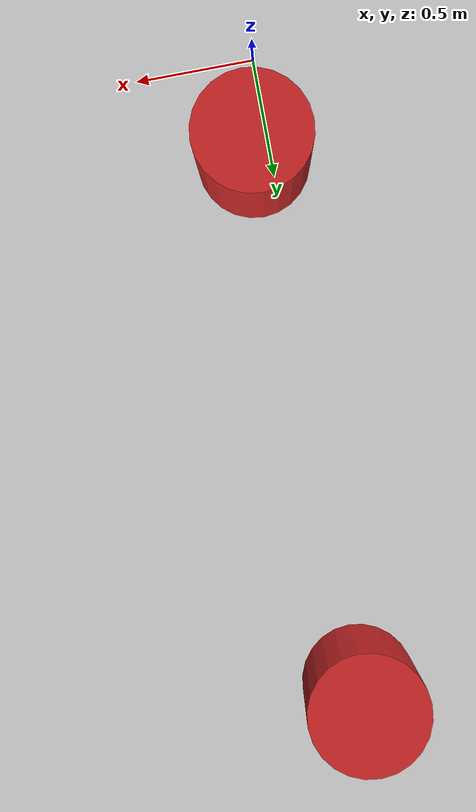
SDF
<sdf version="1.7">
 <world name="default">
  <model name="ground_plane">
   <static>1</static>
   <link name="link">
    <collision name="collision">
     <geometry><plane><normal>0 0 1</normal><size>100 100</size></plane></geometry>
     <surface>
      <contact><collide_bitmask>65535</collide_bitmask></contact>
      <friction><ode><mu>100</mu><mu2>50</mu2></ode></friction>
     </surface>
    </collision>
    <visual name="visual">
     <cast_shadows>0</cast_shadows>
     <geometry><plane><normal>0 0 1</normal><size>100 100</size></plane></geometry>
     <material>
      <script><uri>file://media/materials/scripts/gazebo.material</uri><name>Gazebo/Grey</name></script>
     </material>
    </visual>
   </link>
  </model>
  <model name="my_room">
   <link name="link_0">
    <inertial>
     <mass>0.22579</mass>
     <inertia>
      <ixx>0.0220021</ixx>
      <ixy>0</ixy>
      <ixz>0</ixz>
      <iyy>0.0220021</iyy>
      <iyz>0</iyz>
      <izz>0.00637244</izz>
     </inertia>
    </inertial>
    <pose>0.036507 0.144422 0.125 0 -0 0</pose>
    <visual name="visual">
     <geometry><cylinder><radius>0.237583</radius><length>1</length></cylinder></geometry>
     <material>
      <lighting>1</lighting>
      <script><uri>file://media/materials/scripts/gazebo.material</uri><name>Gazebo/Red</name></script>
      <shader type="pixel"><normal_map>__default__</normal_map></shader>
      <ambient>1 0 0 1</ambient>
      <diffuse>1 0 0 1</diffuse>
      <specular>0.1 0.1 0.1 1</specular>
      <emissive>0 0 0 1</emissive>
     </material>
    </visual>
    <collision name="collision">
     <geometry><cylinder><radius>0.237583</radius><length>1</length></cylinder></geometry>
     <surface>
      <friction>
       <ode><mu>1</mu><mu2>1</mu2><fdir1>0 0 0</fdir1><slip1>0</slip1><slip2>0</slip2></ode>
       <torsional>
        <coefficient>1</coefficient>
        <patch_radius>0</patch_radius>
        <surface_radius>0</surface_radius>
        <use_patch_radius>1</use_patch_radius>
        <ode><slip>0</slip></ode>
       </torsional>
      </friction>
      <bounce><restitution_coefficient>0</restitution_coefficient><threshold>1e+06</threshold></bounce>
      <contact>
       <collide_without_contact>0</collide_without_contact>
       <collide_without_contact_bitmask>1</collide_without_contact_bitmask>
       <collide_bitmask>1</collide_bitmask>
       <ode>
        <soft_cfm>0</soft_cfm>
        <soft_erp>0.2</soft_erp>
        <kp>1e+13</kp>
        <kd>1</kd>
        <max_vel>0.01</max_vel>
        <min_depth>0</min_depth>
       </ode>
       <bullet>
        <split_impulse>1</split_impulse>
        <split_impulse_penetration_threshold>-0.01</split_impulse_penetration_threshold>
        <soft_cfm>0</soft_cfm>
        <soft_erp>0.2</soft_erp>
        <kp>1e+13</kp>
        <kd>1</kd>
       </bullet>
      </contact>
     </surface>
    </collision>
   </link>
   <link name="link_0_clone">
    <inertial>
     <mass>0.22579</mass>
     <inertia>
      <ixx>0.0220021</ixx>
      <ixy>0</ixy>
      <ixz>0</ixz>
      <iyy>0.0220021</iyy>
      <iyz>0</iyz>
      <izz>0.00637244</izz>
     </inertia>
    </inertial>
    <pose>0.006121 2.38529 0.125 0 -0 0</pose>
    <visual name="visual">
     <geometry><cylinder><radius>0.237583</radius><length>1</length></cylinder></geometry>
     <material>
      <lighting>1</lighting>
      <script><uri>file://media/materials/scripts/gazebo.material</uri><name>Gazebo/Red</name></script>
      <shader type="pixel"><normal_map>__default__</normal_map></shader>
      <ambient>1 0 0 1</ambient>
      <diffuse>1 0 0 1</diffuse>
      <specular>0.1 0.1 0.1 1</specular>
      <emissive>0 0 0 1</emissive>
     </material>
    </visual>
    <collision name="collision">
     <geometry><cylinder><radius>0.237583</radius><length>1</length></cylinder></geometry>
     <surface>
      <friction>
       <ode><mu>1</mu><mu2>1</mu2><fdir1>0 0 0</fdir1><slip1>0</slip1><slip2>0</slip2></ode>
       <torsional>
        <coefficient>1</coefficient>
        <patch_radius>0</patch_radius>
        <surface_radius>0</surface_radius>
        <use_patch_radius>1</use_patch_radius>
        <ode><slip>0</slip></ode>
       </torsional>
      </friction>
      <bounce><restitution_coefficient>0</restitution_coefficient><threshold>1e+06</threshold></bounce>
      <contact>
       <collide_without_contact>0</collide_without_contact>
       <collide_without_contact_bitmask>1</collide_without_contact_bitmask>
       <collide_bitmask>1</collide_bitmask>
       <ode>
        <soft_cfm>0</soft_cfm>
        <soft_erp>0.2</soft_erp>
        <kp>1e+13</kp>
        <kd>1</kd>
        <max_vel>0.01</max_vel>
        <min_depth>0</min_depth>
       </ode>
       <bullet>
        <split_impulse>1</split_impulse>
        <split_impulse_penetration_threshold>-0.01</split_impulse_penetration_threshold>
        <soft_cfm>0</soft_cfm>
        <soft_erp>0.2</soft_erp>
        <kp>1e+13</kp>
        <kd>1</kd>
       </bullet>
      </contact>
     </surface>
    </collision>
   </link>
   <static>0</static>
   <pose>0.037205 0.279773 0.375 0 -0 0</pose>
  </model>
 </world>
</sdf>
